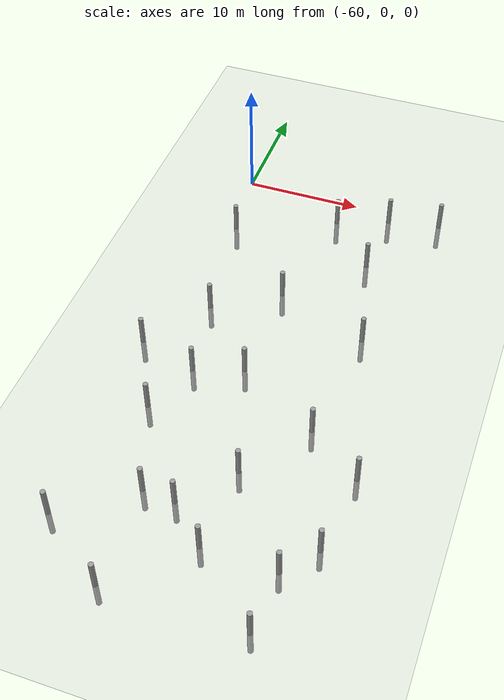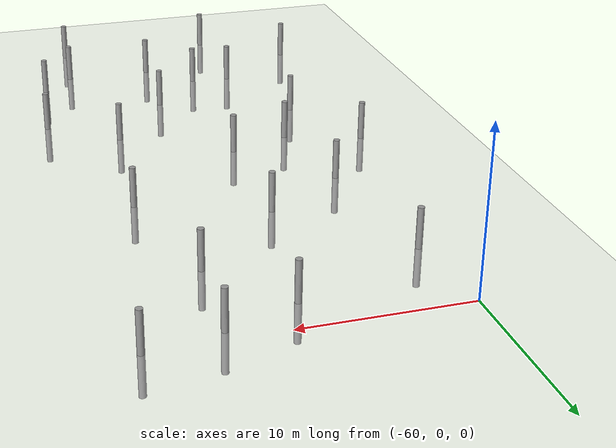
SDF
<sdf version="1.6">
 <world name="default">
  <model name="ground_plane">
   <static>1</static>
   <link name="link">
    <collision name="collision">
     <geometry><plane><normal>0 0 1</normal><size>100 100</size></plane></geometry>
     <surface><friction><ode><mu>100</mu><mu2>50</mu2></ode></friction></surface>
    </collision>
    <visual name="visual">
     <cast_shadows>0</cast_shadows>
     <geometry><plane><normal>0 0 1</normal><size>100 100</size></plane></geometry>
     <material>
      <script><uri>file://media/materials/scripts/gazebo.material</uri><name>Gazebo/Grey</name></script>
     </material>
    </visual>
   </link>
  </model>
  <model name="empty_pillars_7">
   <model name="empty_pillar_clone_10">
    <link name="link">
     <inertial>
      <mass>1</mass>
      <inertia><ixx>0.145833</ixx><ixy>0</ixy><ixz>0</ixz><iyy>0.145833</iyy><iyz>0</iyz><izz>0.125</izz></inertia>
     </inertial>
     <visual name="visual">
      <geometry><cylinder><radius>0.2</radius><length>5</length></cylinder></geometry>
      <material>
       <script><name>Gazebo/Grey</name><uri>file://media/materials/scripts/gazebo.material</uri></script>
       <shader type="vertex"><normal_map>__default__</normal_map></shader>
       <ambient>0.3 0.3 0.3 1</ambient>
       <diffuse>0.7 0.7 0.7 1</diffuse>
       <specular>0.01 0.01 0.01 1</specular>
       <emissive>0 0 0 1</emissive>
      </material>
     </visual>
     <collision name="collision">
      <geometry><cylinder><radius>0.05</radius><length>5</length></cylinder></geometry>
      <surface>
       <friction>
        <ode><mu>1</mu><mu2>1</mu2><fdir1>0 0 0</fdir1><slip1>0</slip1><slip2>0</slip2></ode>
        <torsional>
         <coefficient>1</coefficient>
         <patch_radius>0</patch_radius>
         <surface_radius>0</surface_radius>
         <use_patch_radius>1</use_patch_radius>
         <ode><slip>0</slip></ode>
        </torsional>
       </friction>
       <bounce><restitution_coefficient>0</restitution_coefficient><threshold>1e+06</threshold></bounce>
       <contact>
        <collide_without_contact>0</collide_without_contact>
        <collide_without_contact_bitmask>1</collide_without_contact_bitmask>
        <collide_bitmask>1</collide_bitmask>
        <ode>
         <soft_cfm>0</soft_cfm>
         <soft_erp>0.2</soft_erp>
         <kp>1e+13</kp>
         <kd>1</kd>
         <max_vel>0.01</max_vel>
         <min_depth>0</min_depth>
        </ode>
        <bullet>
         <split_impulse>1</split_impulse>
         <split_impulse_penetration_threshold>-0.01</split_impulse_penetration_threshold>
         <soft_cfm>0</soft_cfm>
         <soft_erp>0.2</soft_erp>
         <kp>1e+13</kp>
         <kd>1</kd>
        </bullet>
       </contact>
      </surface>
     </collision>
    </link>
    <static>0</static>
    <pose>13.5083 -16.8403 0 0 -0 0</pose>
   </model>
   <model name="empty_pillar_clone_28">
    <link name="link">
     <inertial>
      <mass>1</mass>
      <inertia><ixx>0.145833</ixx><ixy>0</ixy><ixz>0</ixz><iyy>0.145833</iyy><iyz>0</iyz><izz>0.125</izz></inertia>
     </inertial>
     <visual name="visual">
      <geometry><cylinder><radius>0.2</radius><length>5</length></cylinder></geometry>
      <material>
       <script><name>Gazebo/Grey</name><uri>file://media/materials/scripts/gazebo.material</uri></script>
       <shader type="vertex"><normal_map>__default__</normal_map></shader>
       <ambient>0.3 0.3 0.3 1</ambient>
       <diffuse>0.7 0.7 0.7 1</diffuse>
       <specular>0.01 0.01 0.01 1</specular>
       <emissive>0 0 0 1</emissive>
      </material>
     </visual>
     <collision name="collision">
      <geometry><cylinder><radius>0.05</radius><length>5</length></cylinder></geometry>
      <surface>
       <friction>
        <ode><mu>1</mu><mu2>1</mu2><fdir1>0 0 0</fdir1><slip1>0</slip1><slip2>0</slip2></ode>
        <torsional>
         <coefficient>1</coefficient>
         <patch_radius>0</patch_radius>
         <surface_radius>0</surface_radius>
         <use_patch_radius>1</use_patch_radius>
         <ode><slip>0</slip></ode>
        </torsional>
       </friction>
       <bounce><restitution_coefficient>0</restitution_coefficient><threshold>1e+06</threshold></bounce>
       <contact>
        <collide_without_contact>0</collide_without_contact>
        <collide_without_contact_bitmask>1</collide_without_contact_bitmask>
        <collide_bitmask>1</collide_bitmask>
        <ode>
         <soft_cfm>0</soft_cfm>
         <soft_erp>0.2</soft_erp>
         <kp>1e+13</kp>
         <kd>1</kd>
         <max_vel>0.01</max_vel>
         <min_depth>0</min_depth>
        </ode>
        <bullet>
         <split_impulse>1</split_impulse>
         <split_impulse_penetration_threshold>-0.01</split_impulse_penetration_threshold>
         <soft_cfm>0</soft_cfm>
         <soft_erp>0.2</soft_erp>
         <kp>1e+13</kp>
         <kd>1</kd>
        </bullet>
       </contact>
      </surface>
     </collision>
    </link>
    <static>0</static>
    <pose>15.5447 15.5867 0 0 -0 0</pose>
   </model>
   <model name="empty_pillar_clone_30">
    <link name="link">
     <inertial>
      <mass>1</mass>
      <inertia><ixx>0.145833</ixx><ixy>0</ixy><ixz>0</ixz><iyy>0.145833</iyy><iyz>0</iyz><izz>0.125</izz></inertia>
     </inertial>
     <visual name="visual">
      <geometry><cylinder><radius>0.2</radius><length>5</length></cylinder></geometry>
      <material>
       <script><name>Gazebo/Grey</name><uri>file://media/materials/scripts/gazebo.material</uri></script>
       <shader type="vertex"><normal_map>__default__</normal_map></shader>
       <ambient>0.3 0.3 0.3 1</ambient>
       <diffuse>0.7 0.7 0.7 1</diffuse>
       <specular>0.01 0.01 0.01 1</specular>
       <emissive>0 0 0 1</emissive>
      </material>
     </visual>
     <collision name="collision">
      <geometry><cylinder><radius>0.05</radius><length>5</length></cylinder></geometry>
      <surface>
       <friction>
        <ode><mu>1</mu><mu2>1</mu2><fdir1>0 0 0</fdir1><slip1>0</slip1><slip2>0</slip2></ode>
        <torsional>
         <coefficient>1</coefficient>
         <patch_radius>0</patch_radius>
         <surface_radius>0</surface_radius>
         <use_patch_radius>1</use_patch_radius>
         <ode><slip>0</slip></ode>
        </torsional>
       </friction>
       <bounce><restitution_coefficient>0</restitution_coefficient><threshold>1e+06</threshold></bounce>
       <contact>
        <collide_without_contact>0</collide_without_contact>
        <collide_without_contact_bitmask>1</collide_without_contact_bitmask>
        <collide_bitmask>1</collide_bitmask>
        <ode>
         <soft_cfm>0</soft_cfm>
         <soft_erp>0.2</soft_erp>
         <kp>1e+13</kp>
         <kd>1</kd>
         <max_vel>0.01</max_vel>
         <min_depth>0</min_depth>
        </ode>
        <bullet>
         <split_impulse>1</split_impulse>
         <split_impulse_penetration_threshold>-0.01</split_impulse_penetration_threshold>
         <soft_cfm>0</soft_cfm>
         <soft_erp>0.2</soft_erp>
         <kp>1e+13</kp>
         <kd>1</kd>
        </bullet>
       </contact>
      </surface>
     </collision>
    </link>
    <static>0</static>
    <pose>23.752 19.2231 0 0 -0 0</pose>
   </model>
   <model name="empty_pillar_clone_31">
    <link name="link">
     <inertial>
      <mass>1</mass>
      <inertia><ixx>0.145833</ixx><ixy>0</ixy><ixz>0</ixz><iyy>0.145833</iyy><iyz>0</iyz><izz>0.125</izz></inertia>
     </inertial>
     <visual name="visual">
      <geometry><cylinder><radius>0.2</radius><length>5</length></cylinder></geometry>
      <material>
       <script><name>Gazebo/Grey</name><uri>file://media/materials/scripts/gazebo.material</uri></script>
       <shader type="vertex"><normal_map>__default__</normal_map></shader>
       <ambient>0.3 0.3 0.3 1</ambient>
       <diffuse>0.7 0.7 0.7 1</diffuse>
       <specular>0.01 0.01 0.01 1</specular>
       <emissive>0 0 0 1</emissive>
      </material>
     </visual>
     <collision name="collision">
      <geometry><cylinder><radius>0.05</radius><length>5</length></cylinder></geometry>
      <surface>
       <friction>
        <ode><mu>1</mu><mu2>1</mu2><fdir1>0 0 0</fdir1><slip1>0</slip1><slip2>0</slip2></ode>
        <torsional>
         <coefficient>1</coefficient>
         <patch_radius>0</patch_radius>
         <surface_radius>0</surface_radius>
         <use_patch_radius>1</use_patch_radius>
         <ode><slip>0</slip></ode>
        </torsional>
       </friction>
       <bounce><restitution_coefficient>0</restitution_coefficient><threshold>1e+06</threshold></bounce>
       <contact>
        <collide_without_contact>0</collide_without_contact>
        <collide_without_contact_bitmask>1</collide_without_contact_bitmask>
        <collide_bitmask>1</collide_bitmask>
        <ode>
         <soft_cfm>0</soft_cfm>
         <soft_erp>0.2</soft_erp>
         <kp>1e+13</kp>
         <kd>1</kd>
         <max_vel>0.01</max_vel>
         <min_depth>0</min_depth>
        </ode>
        <bullet>
         <split_impulse>1</split_impulse>
         <split_impulse_penetration_threshold>-0.01</split_impulse_penetration_threshold>
         <soft_cfm>0</soft_cfm>
         <soft_erp>0.2</soft_erp>
         <kp>1e+13</kp>
         <kd>1</kd>
        </bullet>
       </contact>
      </surface>
     </collision>
    </link>
    <static>0</static>
    <pose>22.0722 9.04182 0 0 -0 0</pose>
   </model>
   <model name="empty_pillar_clone_32">
    <link name="link">
     <inertial>
      <mass>1</mass>
      <inertia><ixx>0.145833</ixx><ixy>0</ixy><ixz>0</ixz><iyy>0.145833</iyy><iyz>0</iyz><izz>0.125</izz></inertia>
     </inertial>
     <visual name="visual">
      <geometry><cylinder><radius>0.2</radius><length>5</length></cylinder></geometry>
      <material>
       <script><name>Gazebo/Grey</name><uri>file://media/materials/scripts/gazebo.material</uri></script>
       <shader type="vertex"><normal_map>__default__</normal_map></shader>
       <ambient>0.3 0.3 0.3 1</ambient>
       <diffuse>0.7 0.7 0.7 1</diffuse>
       <specular>0.01 0.01 0.01 1</specular>
       <emissive>0 0 0 1</emissive>
      </material>
     </visual>
     <collision name="collision">
      <geometry><cylinder><radius>0.05</radius><length>5</length></cylinder></geometry>
      <surface>
       <friction>
        <ode><mu>1</mu><mu2>1</mu2><fdir1>0 0 0</fdir1><slip1>0</slip1><slip2>0</slip2></ode>
        <torsional>
         <coefficient>1</coefficient>
         <patch_radius>0</patch_radius>
         <surface_radius>0</surface_radius>
         <use_patch_radius>1</use_patch_radius>
         <ode><slip>0</slip></ode>
        </torsional>
       </friction>
       <bounce><restitution_coefficient>0</restitution_coefficient><threshold>1e+06</threshold></bounce>
       <contact>
        <collide_without_contact>0</collide_without_contact>
        <collide_without_contact_bitmask>1</collide_without_contact_bitmask>
        <collide_bitmask>1</collide_bitmask>
        <ode>
         <soft_cfm>0</soft_cfm>
         <soft_erp>0.2</soft_erp>
         <kp>1e+13</kp>
         <kd>1</kd>
         <max_vel>0.01</max_vel>
         <min_depth>0</min_depth>
        </ode>
        <bullet>
         <split_impulse>1</split_impulse>
         <split_impulse_penetration_threshold>-0.01</split_impulse_penetration_threshold>
         <soft_cfm>0</soft_cfm>
         <soft_erp>0.2</soft_erp>
         <kp>1e+13</kp>
         <kd>1</kd>
        </bullet>
       </contact>
      </surface>
     </collision>
    </link>
    <static>0</static>
    <pose>21.9854 0.15966 0 0 -0 0</pose>
   </model>
   <model name="empty_pillar_clone_33">
    <link name="link">
     <inertial>
      <mass>1</mass>
      <inertia><ixx>0.145833</ixx><ixy>0</ixy><ixz>0</ixz><iyy>0.145833</iyy><iyz>0</iyz><izz>0.125</izz></inertia>
     </inertial>
     <visual name="visual">
      <geometry><cylinder><radius>0.2</radius><length>5</length></cylinder></geometry>
      <material>
       <script><name>Gazebo/Grey</name><uri>file://media/materials/scripts/gazebo.material</uri></script>
       <shader type="vertex"><normal_map>__default__</normal_map></shader>
       <ambient>0.3 0.3 0.3 1</ambient>
       <diffuse>0.7 0.7 0.7 1</diffuse>
       <specular>0.01 0.01 0.01 1</specular>
       <emissive>0 0 0 1</emissive>
      </material>
     </visual>
     <collision name="collision">
      <geometry><cylinder><radius>0.05</radius><length>5</length></cylinder></geometry>
      <surface>
       <friction>
        <ode><mu>1</mu><mu2>1</mu2><fdir1>0 0 0</fdir1><slip1>0</slip1><slip2>0</slip2></ode>
        <torsional>
         <coefficient>1</coefficient>
         <patch_radius>0</patch_radius>
         <surface_radius>0</surface_radius>
         <use_patch_radius>1</use_patch_radius>
         <ode><slip>0</slip></ode>
        </torsional>
       </friction>
       <bounce><restitution_coefficient>0</restitution_coefficient><threshold>1e+06</threshold></bounce>
       <contact>
        <collide_without_contact>0</collide_without_contact>
        <collide_without_contact_bitmask>1</collide_without_contact_bitmask>
        <collide_bitmask>1</collide_bitmask>
        <ode>
         <soft_cfm>0</soft_cfm>
         <soft_erp>0.2</soft_erp>
         <kp>1e+13</kp>
         <kd>1</kd>
         <max_vel>0.01</max_vel>
         <min_depth>0</min_depth>
        </ode>
        <bullet>
         <split_impulse>1</split_impulse>
         <split_impulse_penetration_threshold>-0.01</split_impulse_penetration_threshold>
         <soft_cfm>0</soft_cfm>
         <soft_erp>0.2</soft_erp>
         <kp>1e+13</kp>
         <kd>1</kd>
        </bullet>
       </contact>
      </surface>
     </collision>
    </link>
    <static>0</static>
    <pose>21.5621 -13.0704 0 0 -0 0</pose>
   </model>
   <model name="empty_pillar_clone_34">
    <link name="link">
     <inertial>
      <mass>1</mass>
      <inertia><ixx>0.145833</ixx><ixy>0</ixy><ixz>0</ixz><iyy>0.145833</iyy><iyz>0</iyz><izz>0.125</izz></inertia>
     </inertial>
     <visual name="visual">
      <geometry><cylinder><radius>0.2</radius><length>5</length></cylinder></geometry>
      <material>
       <script><name>Gazebo/Grey</name><uri>file://media/materials/scripts/gazebo.material</uri></script>
       <shader type="vertex"><normal_map>__default__</normal_map></shader>
       <ambient>0.3 0.3 0.3 1</ambient>
       <diffuse>0.7 0.7 0.7 1</diffuse>
       <specular>0.01 0.01 0.01 1</specular>
       <emissive>0 0 0 1</emissive>
      </material>
     </visual>
     <collision name="collision">
      <geometry><cylinder><radius>0.05</radius><length>5</length></cylinder></geometry>
      <surface>
       <friction>
        <ode><mu>1</mu><mu2>1</mu2><fdir1>0 0 0</fdir1><slip1>0</slip1><slip2>0</slip2></ode>
        <torsional>
         <coefficient>1</coefficient>
         <patch_radius>0</patch_radius>
         <surface_radius>0</surface_radius>
         <use_patch_radius>1</use_patch_radius>
         <ode><slip>0</slip></ode>
        </torsional>
       </friction>
       <bounce><restitution_coefficient>0</restitution_coefficient><threshold>1e+06</threshold></bounce>
       <contact>
        <collide_without_contact>0</collide_without_contact>
        <collide_without_contact_bitmask>1</collide_without_contact_bitmask>
        <collide_bitmask>1</collide_bitmask>
        <ode>
         <soft_cfm>0</soft_cfm>
         <soft_erp>0.2</soft_erp>
         <kp>1e+13</kp>
         <kd>1</kd>
         <max_vel>0.01</max_vel>
         <min_depth>0</min_depth>
        </ode>
        <bullet>
         <split_impulse>1</split_impulse>
         <split_impulse_penetration_threshold>-0.01</split_impulse_penetration_threshold>
         <soft_cfm>0</soft_cfm>
         <soft_erp>0.2</soft_erp>
         <kp>1e+13</kp>
         <kd>1</kd>
        </bullet>
       </contact>
      </surface>
     </collision>
    </link>
    <static>0</static>
    <pose>19.0861 -20.8946 0 0 -0 0</pose>
   </model>
   <model name="empty_pillar_clone_48">
    <link name="link">
     <inertial>
      <mass>1</mass>
      <inertia><ixx>0.145833</ixx><ixy>0</ixy><ixz>0</ixz><iyy>0.145833</iyy><iyz>0</iyz><izz>0.125</izz></inertia>
     </inertial>
     <visual name="visual">
      <geometry><cylinder><radius>0.2</radius><length>5</length></cylinder></geometry>
      <material>
       <script><name>Gazebo/Grey</name><uri>file://media/materials/scripts/gazebo.material</uri></script>
       <shader type="vertex"><normal_map>__default__</normal_map></shader>
       <ambient>0.3 0.3 0.3 1</ambient>
       <diffuse>0.7 0.7 0.7 1</diffuse>
       <specular>0.01 0.01 0.01 1</specular>
       <emissive>0 0 0 1</emissive>
      </material>
     </visual>
     <collision name="collision">
      <geometry><cylinder><radius>0.05</radius><length>5</length></cylinder></geometry>
      <surface>
       <friction>
        <ode><mu>1</mu><mu2>1</mu2><fdir1>0 0 0</fdir1><slip1>0</slip1><slip2>0</slip2></ode>
        <torsional>
         <coefficient>1</coefficient>
         <patch_radius>0</patch_radius>
         <surface_radius>0</surface_radius>
         <use_patch_radius>1</use_patch_radius>
         <ode><slip>0</slip></ode>
        </torsional>
       </friction>
       <bounce><restitution_coefficient>0</restitution_coefficient><threshold>1e+06</threshold></bounce>
       <contact>
        <collide_without_contact>0</collide_without_contact>
        <collide_without_contact_bitmask>1</collide_without_contact_bitmask>
        <collide_bitmask>1</collide_bitmask>
        <ode>
         <soft_cfm>0</soft_cfm>
         <soft_erp>0.2</soft_erp>
         <kp>1e+13</kp>
         <kd>1</kd>
         <max_vel>0.01</max_vel>
         <min_depth>0</min_depth>
        </ode>
        <bullet>
         <split_impulse>1</split_impulse>
         <split_impulse_penetration_threshold>-0.01</split_impulse_penetration_threshold>
         <soft_cfm>0</soft_cfm>
         <soft_erp>0.2</soft_erp>
         <kp>1e+13</kp>
         <kd>1</kd>
        </bullet>
       </contact>
      </surface>
     </collision>
    </link>
    <static>0</static>
    <pose>16.2633 -5.65052 0 0 -0 0</pose>
   </model>
   <model name="empty_pillar_clone_54">
    <link name="link">
     <inertial>
      <mass>1</mass>
      <inertia><ixx>0.145833</ixx><ixy>0</ixy><ixz>0</ixz><iyy>0.145833</iyy><iyz>0</iyz><izz>0.125</izz></inertia>
     </inertial>
     <visual name="visual">
      <geometry><cylinder><radius>0.2</radius><length>5</length></cylinder></geometry>
      <material>
       <script><name>Gazebo/Grey</name><uri>file://media/materials/scripts/gazebo.material</uri></script>
       <shader type="vertex"><normal_map>__default__</normal_map></shader>
       <ambient>0.3 0.3 0.3 1</ambient>
       <diffuse>0.7 0.7 0.7 1</diffuse>
       <specular>0.01 0.01 0.01 1</specular>
       <emissive>0 0 0 1</emissive>
      </material>
     </visual>
     <collision name="collision">
      <geometry><cylinder><radius>0.05</radius><length>5</length></cylinder></geometry>
      <surface>
       <friction>
        <ode><mu>1</mu><mu2>1</mu2><fdir1>0 0 0</fdir1><slip1>0</slip1><slip2>0</slip2></ode>
        <torsional>
         <coefficient>1</coefficient>
         <patch_radius>0</patch_radius>
         <surface_radius>0</surface_radius>
         <use_patch_radius>1</use_patch_radius>
         <ode><slip>0</slip></ode>
        </torsional>
       </friction>
       <bounce><restitution_coefficient>0</restitution_coefficient><threshold>1e+06</threshold></bounce>
       <contact>
        <collide_without_contact>0</collide_without_contact>
        <collide_without_contact_bitmask>1</collide_without_contact_bitmask>
        <collide_bitmask>1</collide_bitmask>
        <ode>
         <soft_cfm>0</soft_cfm>
         <soft_erp>0.2</soft_erp>
         <kp>1e+13</kp>
         <kd>1</kd>
         <max_vel>0.01</max_vel>
         <min_depth>0</min_depth>
        </ode>
        <bullet>
         <split_impulse>1</split_impulse>
         <split_impulse_penetration_threshold>-0.01</split_impulse_penetration_threshold>
         <soft_cfm>0</soft_cfm>
         <soft_erp>0.2</soft_erp>
         <kp>1e+13</kp>
         <kd>1</kd>
        </bullet>
       </contact>
      </surface>
     </collision>
    </link>
    <static>0</static>
    <pose>24.557 -15.8784 0 0 -0 0</pose>
   </model>
   <model name="empty_pillar_clone_55">
    <link name="link">
     <inertial>
      <mass>1</mass>
      <inertia><ixx>0.145833</ixx><ixy>0</ixy><ixz>0</ixz><iyy>0.145833</iyy><iyz>0</iyz><izz>0.125</izz></inertia>
     </inertial>
     <visual name="visual">
      <geometry><cylinder><radius>0.2</radius><length>5</length></cylinder></geometry>
      <material>
       <script><name>Gazebo/Grey</name><uri>file://media/materials/scripts/gazebo.material</uri></script>
       <shader type="vertex"><normal_map>__default__</normal_map></shader>
       <ambient>0.3 0.3 0.3 1</ambient>
       <diffuse>0.7 0.7 0.7 1</diffuse>
       <specular>0.01 0.01 0.01 1</specular>
       <emissive>0 0 0 1</emissive>
      </material>
     </visual>
     <collision name="collision">
      <geometry><cylinder><radius>0.05</radius><length>5</length></cylinder></geometry>
      <surface>
       <friction>
        <ode><mu>1</mu><mu2>1</mu2><fdir1>0 0 0</fdir1><slip1>0</slip1><slip2>0</slip2></ode>
        <torsional>
         <coefficient>1</coefficient>
         <patch_radius>0</patch_radius>
         <surface_radius>0</surface_radius>
         <use_patch_radius>1</use_patch_radius>
         <ode><slip>0</slip></ode>
        </torsional>
       </friction>
       <bounce><restitution_coefficient>0</restitution_coefficient><threshold>1e+06</threshold></bounce>
       <contact>
        <collide_without_contact>0</collide_without_contact>
        <collide_without_contact_bitmask>1</collide_without_contact_bitmask>
        <collide_bitmask>1</collide_bitmask>
        <ode>
         <soft_cfm>0</soft_cfm>
         <soft_erp>0.2</soft_erp>
         <kp>1e+13</kp>
         <kd>1</kd>
         <max_vel>0.01</max_vel>
         <min_depth>0</min_depth>
        </ode>
        <bullet>
         <split_impulse>1</split_impulse>
         <split_impulse_penetration_threshold>-0.01</split_impulse_penetration_threshold>
         <soft_cfm>0</soft_cfm>
         <soft_erp>0.2</soft_erp>
         <kp>1e+13</kp>
         <kd>1</kd>
        </bullet>
       </contact>
      </surface>
     </collision>
    </link>
    <static>0</static>
    <pose>13.2247 0.382706 0 0 -0 0</pose>
   </model>
   <model name="empty_pillar_clone_6">
    <link name="link">
     <inertial>
      <mass>1</mass>
      <inertia><ixx>0.145833</ixx><ixy>0</ixy><ixz>0</ixz><iyy>0.145833</iyy><iyz>0</iyz><izz>0.125</izz></inertia>
     </inertial>
     <visual name="visual">
      <geometry><cylinder><radius>0.2</radius><length>5</length></cylinder></geometry>
      <material>
       <script><name>Gazebo/Grey</name><uri>file://media/materials/scripts/gazebo.material</uri></script>
       <shader type="vertex"><normal_map>__default__</normal_map></shader>
       <ambient>0.3 0.3 0.3 1</ambient>
       <diffuse>0.7 0.7 0.7 1</diffuse>
       <specular>0.01 0.01 0.01 1</specular>
       <emissive>0 0 0 1</emissive>
      </material>
     </visual>
     <collision name="collision">
      <geometry><cylinder><radius>0.05</radius><length>5</length></cylinder></geometry>
      <surface>
       <friction>
        <ode><mu>1</mu><mu2>1</mu2><fdir1>0 0 0</fdir1><slip1>0</slip1><slip2>0</slip2></ode>
        <torsional>
         <coefficient>1</coefficient>
         <patch_radius>0</patch_radius>
         <surface_radius>0</surface_radius>
         <use_patch_radius>1</use_patch_radius>
         <ode><slip>0</slip></ode>
        </torsional>
       </friction>
       <bounce><restitution_coefficient>0</restitution_coefficient><threshold>1e+06</threshold></bounce>
       <contact>
        <collide_without_contact>0</collide_without_contact>
        <collide_without_contact_bitmask>1</collide_without_contact_bitmask>
        <collide_bitmask>1</collide_bitmask>
        <ode>
         <soft_cfm>0</soft_cfm>
         <soft_erp>0.2</soft_erp>
         <kp>1e+13</kp>
         <kd>1</kd>
         <max_vel>0.01</max_vel>
         <min_depth>0</min_depth>
        </ode>
        <bullet>
         <split_impulse>1</split_impulse>
         <split_impulse_penetration_threshold>-0.01</split_impulse_penetration_threshold>
         <soft_cfm>0</soft_cfm>
         <soft_erp>0.2</soft_erp>
         <kp>1e+13</kp>
         <kd>1</kd>
        </bullet>
       </contact>
      </surface>
     </collision>
    </link>
    <static>0</static>
    <pose>24.9156 -9.11394 0 0 -0 0</pose>
   </model>
   <model name="empty_pillar_clone_7">
    <link name="link">
     <inertial>
      <mass>1</mass>
      <inertia><ixx>0.145833</ixx><ixy>0</ixy><ixz>0</ixz><iyy>0.145833</iyy><iyz>0</iyz><izz>0.125</izz></inertia>
     </inertial>
     <visual name="visual">
      <geometry><cylinder><radius>0.2</radius><length>5</length></cylinder></geometry>
      <material>
       <script><name>Gazebo/Grey</name><uri>file://media/materials/scripts/gazebo.material</uri></script>
       <shader type="vertex"><normal_map>__default__</normal_map></shader>
       <ambient>0.3 0.3 0.3 1</ambient>
       <diffuse>0.7 0.7 0.7 1</diffuse>
       <specular>0.01 0.01 0.01 1</specular>
       <emissive>0 0 0 1</emissive>
      </material>
     </visual>
     <collision name="collision">
      <geometry><cylinder><radius>0.05</radius><length>5</length></cylinder></geometry>
      <surface>
       <friction>
        <ode><mu>1</mu><mu2>1</mu2><fdir1>0 0 0</fdir1><slip1>0</slip1><slip2>0</slip2></ode>
        <torsional>
         <coefficient>1</coefficient>
         <patch_radius>0</patch_radius>
         <surface_radius>0</surface_radius>
         <use_patch_radius>1</use_patch_radius>
         <ode><slip>0</slip></ode>
        </torsional>
       </friction>
       <bounce><restitution_coefficient>0</restitution_coefficient><threshold>1e+06</threshold></bounce>
       <contact>
        <collide_without_contact>0</collide_without_contact>
        <collide_without_contact_bitmask>1</collide_without_contact_bitmask>
        <collide_bitmask>1</collide_bitmask>
        <ode>
         <soft_cfm>0</soft_cfm>
         <soft_erp>0.2</soft_erp>
         <kp>1e+13</kp>
         <kd>1</kd>
         <max_vel>0.01</max_vel>
         <min_depth>0</min_depth>
        </ode>
        <bullet>
         <split_impulse>1</split_impulse>
         <split_impulse_penetration_threshold>-0.01</split_impulse_penetration_threshold>
         <soft_cfm>0</soft_cfm>
         <soft_erp>0.2</soft_erp>
         <kp>1e+13</kp>
         <kd>1</kd>
        </bullet>
       </contact>
      </surface>
     </collision>
    </link>
    <static>0</static>
    <pose>16.9242 5.74519 0 0 -0 0</pose>
   </model>
   <model name="empty_pillar_clone_8">
    <link name="link">
     <inertial>
      <mass>1</mass>
      <inertia><ixx>0.145833</ixx><ixy>0</ixy><ixz>0</ixz><iyy>0.145833</iyy><iyz>0</iyz><izz>0.125</izz></inertia>
     </inertial>
     <visual name="visual">
      <geometry><cylinder><radius>0.2</radius><length>5</length></cylinder></geometry>
      <material>
       <script><name>Gazebo/Grey</name><uri>file://media/materials/scripts/gazebo.material</uri></script>
       <shader type="vertex"><normal_map>__default__</normal_map></shader>
       <ambient>0.3 0.3 0.3 1</ambient>
       <diffuse>0.7 0.7 0.7 1</diffuse>
       <specular>0.01 0.01 0.01 1</specular>
       <emissive>0 0 0 1</emissive>
      </material>
     </visual>
     <collision name="collision">
      <geometry><cylinder><radius>0.05</radius><length>5</length></cylinder></geometry>
      <surface>
       <friction>
        <ode><mu>1</mu><mu2>1</mu2><fdir1>0 0 0</fdir1><slip1>0</slip1><slip2>0</slip2></ode>
        <torsional>
         <coefficient>1</coefficient>
         <patch_radius>0</patch_radius>
         <surface_radius>0</surface_radius>
         <use_patch_radius>1</use_patch_radius>
         <ode><slip>0</slip></ode>
        </torsional>
       </friction>
       <bounce><restitution_coefficient>0</restitution_coefficient><threshold>1e+06</threshold></bounce>
       <contact>
        <collide_without_contact>0</collide_without_contact>
        <collide_without_contact_bitmask>1</collide_without_contact_bitmask>
        <collide_bitmask>1</collide_bitmask>
        <ode>
         <soft_cfm>0</soft_cfm>
         <soft_erp>0.2</soft_erp>
         <kp>1e+13</kp>
         <kd>1</kd>
         <max_vel>0.01</max_vel>
         <min_depth>0</min_depth>
        </ode>
        <bullet>
         <split_impulse>1</split_impulse>
         <split_impulse_penetration_threshold>-0.01</split_impulse_penetration_threshold>
         <soft_cfm>0</soft_cfm>
         <soft_erp>0.2</soft_erp>
         <kp>1e+13</kp>
         <kd>1</kd>
        </bullet>
       </contact>
      </surface>
     </collision>
    </link>
    <static>0</static>
    <pose>18.9854 -12.8403 0 0 -0 0</pose>
   </model>
   <model name="empty_pillar_clone_9">
    <link name="link">
     <inertial>
      <mass>1</mass>
      <inertia><ixx>0.145833</ixx><ixy>0</ixy><ixz>0</ixz><iyy>0.145833</iyy><iyz>0</iyz><izz>0.125</izz></inertia>
     </inertial>
     <visual name="visual">
      <geometry><cylinder><radius>0.2</radius><length>5</length></cylinder></geometry>
      <material>
       <script><name>Gazebo/Grey</name><uri>file://media/materials/scripts/gazebo.material</uri></script>
       <shader type="vertex"><normal_map>__default__</normal_map></shader>
       <ambient>0.3 0.3 0.3 1</ambient>
       <diffuse>0.7 0.7 0.7 1</diffuse>
       <specular>0.01 0.01 0.01 1</specular>
       <emissive>0 0 0 1</emissive>
      </material>
     </visual>
     <collision name="collision">
      <geometry><cylinder><radius>0.05</radius><length>5</length></cylinder></geometry>
      <surface>
       <friction>
        <ode><mu>1</mu><mu2>1</mu2><fdir1>0 0 0</fdir1><slip1>0</slip1><slip2>0</slip2></ode>
        <torsional>
         <coefficient>1</coefficient>
         <patch_radius>0</patch_radius>
         <surface_radius>0</surface_radius>
         <use_patch_radius>1</use_patch_radius>
         <ode><slip>0</slip></ode>
        </torsional>
       </friction>
       <bounce><restitution_coefficient>0</restitution_coefficient><threshold>1e+06</threshold></bounce>
       <contact>
        <collide_without_contact>0</collide_without_contact>
        <collide_without_contact_bitmask>1</collide_without_contact_bitmask>
        <collide_bitmask>1</collide_bitmask>
        <ode>
         <soft_cfm>0</soft_cfm>
         <soft_erp>0.2</soft_erp>
         <kp>1e+13</kp>
         <kd>1</kd>
         <max_vel>0.01</max_vel>
         <min_depth>0</min_depth>
        </ode>
        <bullet>
         <split_impulse>1</split_impulse>
         <split_impulse_penetration_threshold>-0.01</split_impulse_penetration_threshold>
         <soft_cfm>0</soft_cfm>
         <soft_erp>0.2</soft_erp>
         <kp>1e+13</kp>
         <kd>1</kd>
        </bullet>
       </contact>
      </surface>
     </collision>
    </link>
    <static>0</static>
    <pose>18.1111 -1.13899 0 0 -0 0</pose>
   </model>
   <static>0</static>
   <pose>-74.8311 -21.7347 0 0 -0 0</pose>
  </model>
  <model name="empty_pillars_8">
   <model name="empty_pillar_clone_18">
    <link name="link">
     <inertial>
      <mass>1</mass>
      <inertia><ixx>0.145833</ixx><ixy>0</ixy><ixz>0</ixz><iyy>0.145833</iyy><iyz>0</iyz><izz>0.125</izz></inertia>
     </inertial>
     <visual name="visual">
      <geometry><cylinder><radius>0.2</radius><length>5</length></cylinder></geometry>
      <material>
       <script><name>Gazebo/Grey</name><uri>file://media/materials/scripts/gazebo.material</uri></script>
       <shader type="vertex"><normal_map>__default__</normal_map></shader>
       <ambient>0.3 0.3 0.3 1</ambient>
       <diffuse>0.7 0.7 0.7 1</diffuse>
       <specular>0.01 0.01 0.01 1</specular>
       <emissive>0 0 0 1</emissive>
      </material>
     </visual>
     <collision name="collision">
      <geometry><cylinder><radius>0.05</radius><length>5</length></cylinder></geometry>
      <surface>
       <friction>
        <ode><mu>1</mu><mu2>1</mu2><fdir1>0 0 0</fdir1><slip1>0</slip1><slip2>0</slip2></ode>
        <torsional>
         <coefficient>1</coefficient>
         <patch_radius>0</patch_radius>
         <surface_radius>0</surface_radius>
         <use_patch_radius>1</use_patch_radius>
         <ode><slip>0</slip></ode>
        </torsional>
       </friction>
       <bounce><restitution_coefficient>0</restitution_coefficient><threshold>1e+06</threshold></bounce>
       <contact>
        <collide_without_contact>0</collide_without_contact>
        <collide_without_contact_bitmask>1</collide_without_contact_bitmask>
        <collide_bitmask>1</collide_bitmask>
        <ode>
         <soft_cfm>0</soft_cfm>
         <soft_erp>0.2</soft_erp>
         <kp>1e+13</kp>
         <kd>1</kd>
         <max_vel>0.01</max_vel>
         <min_depth>0</min_depth>
        </ode>
        <bullet>
         <split_impulse>1</split_impulse>
         <split_impulse_penetration_threshold>-0.01</split_impulse_penetration_threshold>
         <soft_cfm>0</soft_cfm>
         <soft_erp>0.2</soft_erp>
         <kp>1e+13</kp>
         <kd>1</kd>
        </bullet>
       </contact>
      </surface>
     </collision>
    </link>
    <static>0</static>
    <pose>-20.0146 5.15966 0 0 -0 0</pose>
   </model>
   <model name="empty_pillar_clone_21">
    <link name="link">
     <inertial>
      <mass>1</mass>
      <inertia><ixx>0.145833</ixx><ixy>0</ixy><ixz>0</ixz><iyy>0.145833</iyy><iyz>0</iyz><izz>0.125</izz></inertia>
     </inertial>
     <visual name="visual">
      <geometry><cylinder><radius>0.2</radius><length>5</length></cylinder></geometry>
      <material>
       <script><name>Gazebo/Grey</name><uri>file://media/materials/scripts/gazebo.material</uri></script>
       <shader type="vertex"><normal_map>__default__</normal_map></shader>
       <ambient>0.3 0.3 0.3 1</ambient>
       <diffuse>0.7 0.7 0.7 1</diffuse>
       <specular>0.01 0.01 0.01 1</specular>
       <emissive>0 0 0 1</emissive>
      </material>
     </visual>
     <collision name="collision">
      <geometry><cylinder><radius>0.05</radius><length>5</length></cylinder></geometry>
      <surface>
       <friction>
        <ode><mu>1</mu><mu2>1</mu2><fdir1>0 0 0</fdir1><slip1>0</slip1><slip2>0</slip2></ode>
        <torsional>
         <coefficient>1</coefficient>
         <patch_radius>0</patch_radius>
         <surface_radius>0</surface_radius>
         <use_patch_radius>1</use_patch_radius>
         <ode><slip>0</slip></ode>
        </torsional>
       </friction>
       <bounce><restitution_coefficient>0</restitution_coefficient><threshold>1e+06</threshold></bounce>
       <contact>
        <collide_without_contact>0</collide_without_contact>
        <collide_without_contact_bitmask>1</collide_without_contact_bitmask>
        <collide_bitmask>1</collide_bitmask>
        <ode>
         <soft_cfm>0</soft_cfm>
         <soft_erp>0.2</soft_erp>
         <kp>1e+13</kp>
         <kd>1</kd>
         <max_vel>0.01</max_vel>
         <min_depth>0</min_depth>
        </ode>
        <bullet>
         <split_impulse>1</split_impulse>
         <split_impulse_penetration_threshold>-0.01</split_impulse_penetration_threshold>
         <soft_cfm>0</soft_cfm>
         <soft_erp>0.2</soft_erp>
         <kp>1e+13</kp>
         <kd>1</kd>
        </bullet>
       </contact>
      </surface>
     </collision>
    </link>
    <static>0</static>
    <pose>-21.7273 19.7662 0 0 -0 0</pose>
   </model>
   <model name="empty_pillar_clone_22">
    <link name="link">
     <inertial>
      <mass>1</mass>
      <inertia><ixx>0.145833</ixx><ixy>0</ixy><ixz>0</ixz><iyy>0.145833</iyy><iyz>0</iyz><izz>0.125</izz></inertia>
     </inertial>
     <visual name="visual">
      <geometry><cylinder><radius>0.2</radius><length>5</length></cylinder></geometry>
      <material>
       <script><name>Gazebo/Grey</name><uri>file://media/materials/scripts/gazebo.material</uri></script>
       <shader type="vertex"><normal_map>__default__</normal_map></shader>
       <ambient>0.3 0.3 0.3 1</ambient>
       <diffuse>0.7 0.7 0.7 1</diffuse>
       <specular>0.01 0.01 0.01 1</specular>
       <emissive>0 0 0 1</emissive>
      </material>
     </visual>
     <collision name="collision">
      <geometry><cylinder><radius>0.05</radius><length>5</length></cylinder></geometry>
      <surface>
       <friction>
        <ode><mu>1</mu><mu2>1</mu2><fdir1>0 0 0</fdir1><slip1>0</slip1><slip2>0</slip2></ode>
        <torsional>
         <coefficient>1</coefficient>
         <patch_radius>0</patch_radius>
         <surface_radius>0</surface_radius>
         <use_patch_radius>1</use_patch_radius>
         <ode><slip>0</slip></ode>
        </torsional>
       </friction>
       <bounce><restitution_coefficient>0</restitution_coefficient><threshold>1e+06</threshold></bounce>
       <contact>
        <collide_without_contact>0</collide_without_contact>
        <collide_without_contact_bitmask>1</collide_without_contact_bitmask>
        <collide_bitmask>1</collide_bitmask>
        <ode>
         <soft_cfm>0</soft_cfm>
         <soft_erp>0.2</soft_erp>
         <kp>1e+13</kp>
         <kd>1</kd>
         <max_vel>0.01</max_vel>
         <min_depth>0</min_depth>
        </ode>
        <bullet>
         <split_impulse>1</split_impulse>
         <split_impulse_penetration_threshold>-0.01</split_impulse_penetration_threshold>
         <soft_cfm>0</soft_cfm>
         <soft_erp>0.2</soft_erp>
         <kp>1e+13</kp>
         <kd>1</kd>
        </bullet>
       </contact>
      </surface>
     </collision>
    </link>
    <static>0</static>
    <pose>-17.3667 20.5782 0 0 -0 0</pose>
   </model>
   <model name="empty_pillar_clone_35">
    <link name="link">
     <inertial>
      <mass>1</mass>
      <inertia><ixx>0.145833</ixx><ixy>0</ixy><ixz>0</ixz><iyy>0.145833</iyy><iyz>0</iyz><izz>0.125</izz></inertia>
     </inertial>
     <visual name="visual">
      <geometry><cylinder><radius>0.2</radius><length>5</length></cylinder></geometry>
      <material>
       <script><name>Gazebo/Grey</name><uri>file://media/materials/scripts/gazebo.material</uri></script>
       <shader type="vertex"><normal_map>__default__</normal_map></shader>
       <ambient>0.3 0.3 0.3 1</ambient>
       <diffuse>0.7 0.7 0.7 1</diffuse>
       <specular>0.01 0.01 0.01 1</specular>
       <emissive>0 0 0 1</emissive>
      </material>
     </visual>
     <collision name="collision">
      <geometry><cylinder><radius>0.05</radius><length>5</length></cylinder></geometry>
      <surface>
       <friction>
        <ode><mu>1</mu><mu2>1</mu2><fdir1>0 0 0</fdir1><slip1>0</slip1><slip2>0</slip2></ode>
        <torsional>
         <coefficient>1</coefficient>
         <patch_radius>0</patch_radius>
         <surface_radius>0</surface_radius>
         <use_patch_radius>1</use_patch_radius>
         <ode><slip>0</slip></ode>
        </torsional>
       </friction>
       <bounce><restitution_coefficient>0</restitution_coefficient><threshold>1e+06</threshold></bounce>
       <contact>
        <collide_without_contact>0</collide_without_contact>
        <collide_without_contact_bitmask>1</collide_without_contact_bitmask>
        <collide_bitmask>1</collide_bitmask>
        <ode>
         <soft_cfm>0</soft_cfm>
         <soft_erp>0.2</soft_erp>
         <kp>1e+13</kp>
         <kd>1</kd>
         <max_vel>0.01</max_vel>
         <min_depth>0</min_depth>
        </ode>
        <bullet>
         <split_impulse>1</split_impulse>
         <split_impulse_penetration_threshold>-0.01</split_impulse_penetration_threshold>
         <soft_cfm>0</soft_cfm>
         <soft_erp>0.2</soft_erp>
         <kp>1e+13</kp>
         <kd>1</kd>
        </bullet>
       </contact>
      </surface>
     </collision>
    </link>
    <static>0</static>
    <pose>-19.4431 -17.0281 0 0 -0 0</pose>
   </model>
   <model name="empty_pillar_clone_36">
    <link name="link">
     <inertial>
      <mass>1</mass>
      <inertia><ixx>0.145833</ixx><ixy>0</ixy><ixz>0</ixz><iyy>0.145833</iyy><iyz>0</iyz><izz>0.125</izz></inertia>
     </inertial>
     <visual name="visual">
      <geometry><cylinder><radius>0.2</radius><length>5</length></cylinder></geometry>
      <material>
       <script><name>Gazebo/Grey</name><uri>file://media/materials/scripts/gazebo.material</uri></script>
       <shader type="vertex"><normal_map>__default__</normal_map></shader>
       <ambient>0.3 0.3 0.3 1</ambient>
       <diffuse>0.7 0.7 0.7 1</diffuse>
       <specular>0.01 0.01 0.01 1</specular>
       <emissive>0 0 0 1</emissive>
      </material>
     </visual>
     <collision name="collision">
      <geometry><cylinder><radius>0.05</radius><length>5</length></cylinder></geometry>
      <surface>
       <friction>
        <ode><mu>1</mu><mu2>1</mu2><fdir1>0 0 0</fdir1><slip1>0</slip1><slip2>0</slip2></ode>
        <torsional>
         <coefficient>1</coefficient>
         <patch_radius>0</patch_radius>
         <surface_radius>0</surface_radius>
         <use_patch_radius>1</use_patch_radius>
         <ode><slip>0</slip></ode>
        </torsional>
       </friction>
       <bounce><restitution_coefficient>0</restitution_coefficient><threshold>1e+06</threshold></bounce>
       <contact>
        <collide_without_contact>0</collide_without_contact>
        <collide_without_contact_bitmask>1</collide_without_contact_bitmask>
        <collide_bitmask>1</collide_bitmask>
        <ode>
         <soft_cfm>0</soft_cfm>
         <soft_erp>0.2</soft_erp>
         <kp>1e+13</kp>
         <kd>1</kd>
         <max_vel>0.01</max_vel>
         <min_depth>0</min_depth>
        </ode>
        <bullet>
         <split_impulse>1</split_impulse>
         <split_impulse_penetration_threshold>-0.01</split_impulse_penetration_threshold>
         <soft_cfm>0</soft_cfm>
         <soft_erp>0.2</soft_erp>
         <kp>1e+13</kp>
         <kd>1</kd>
        </bullet>
       </contact>
      </surface>
     </collision>
    </link>
    <static>0</static>
    <pose>-21.0146 -4.84034 0 0 -0 0</pose>
   </model>
   <model name="empty_pillar_clone_37">
    <link name="link">
     <inertial>
      <mass>1</mass>
      <inertia><ixx>0.145833</ixx><ixy>0</ixy><ixz>0</ixz><iyy>0.145833</iyy><iyz>0</iyz><izz>0.125</izz></inertia>
     </inertial>
     <visual name="visual">
      <geometry><cylinder><radius>0.2</radius><length>5</length></cylinder></geometry>
      <material>
       <script><name>Gazebo/Grey</name><uri>file://media/materials/scripts/gazebo.material</uri></script>
       <shader type="vertex"><normal_map>__default__</normal_map></shader>
       <ambient>0.3 0.3 0.3 1</ambient>
       <diffuse>0.7 0.7 0.7 1</diffuse>
       <specular>0.01 0.01 0.01 1</specular>
       <emissive>0 0 0 1</emissive>
      </material>
     </visual>
     <collision name="collision">
      <geometry><cylinder><radius>0.05</radius><length>5</length></cylinder></geometry>
      <surface>
       <friction>
        <ode><mu>1</mu><mu2>1</mu2><fdir1>0 0 0</fdir1><slip1>0</slip1><slip2>0</slip2></ode>
        <torsional>
         <coefficient>1</coefficient>
         <patch_radius>0</patch_radius>
         <surface_radius>0</surface_radius>
         <use_patch_radius>1</use_patch_radius>
         <ode><slip>0</slip></ode>
        </torsional>
       </friction>
       <bounce><restitution_coefficient>0</restitution_coefficient><threshold>1e+06</threshold></bounce>
       <contact>
        <collide_without_contact>0</collide_without_contact>
        <collide_without_contact_bitmask>1</collide_without_contact_bitmask>
        <collide_bitmask>1</collide_bitmask>
        <ode>
         <soft_cfm>0</soft_cfm>
         <soft_erp>0.2</soft_erp>
         <kp>1e+13</kp>
         <kd>1</kd>
         <max_vel>0.01</max_vel>
         <min_depth>0</min_depth>
        </ode>
        <bullet>
         <split_impulse>1</split_impulse>
         <split_impulse_penetration_threshold>-0.01</split_impulse_penetration_threshold>
         <soft_cfm>0</soft_cfm>
         <soft_erp>0.2</soft_erp>
         <kp>1e+13</kp>
         <kd>1</kd>
        </bullet>
       </contact>
      </surface>
     </collision>
    </link>
    <static>0</static>
    <pose>-16.6035 -7.98282 0 0 -0 0</pose>
   </model>
   <model name="empty_pillar_clone_40">
    <link name="link">
     <inertial>
      <mass>1</mass>
      <inertia><ixx>0.145833</ixx><ixy>0</ixy><ixz>0</ixz><iyy>0.145833</iyy><iyz>0</iyz><izz>0.125</izz></inertia>
     </inertial>
     <visual name="visual">
      <geometry><cylinder><radius>0.2</radius><length>5</length></cylinder></geometry>
      <material>
       <script><name>Gazebo/Grey</name><uri>file://media/materials/scripts/gazebo.material</uri></script>
       <shader type="vertex"><normal_map>__default__</normal_map></shader>
       <ambient>0.3 0.3 0.3 1</ambient>
       <diffuse>0.7 0.7 0.7 1</diffuse>
       <specular>0.01 0.01 0.01 1</specular>
       <emissive>0 0 0 1</emissive>
      </material>
     </visual>
     <collision name="collision">
      <geometry><cylinder><radius>0.05</radius><length>5</length></cylinder></geometry>
      <surface>
       <friction>
        <ode><mu>1</mu><mu2>1</mu2><fdir1>0 0 0</fdir1><slip1>0</slip1><slip2>0</slip2></ode>
        <torsional>
         <coefficient>1</coefficient>
         <patch_radius>0</patch_radius>
         <surface_radius>0</surface_radius>
         <use_patch_radius>1</use_patch_radius>
         <ode><slip>0</slip></ode>
        </torsional>
       </friction>
       <bounce><restitution_coefficient>0</restitution_coefficient><threshold>1e+06</threshold></bounce>
       <contact>
        <collide_without_contact>0</collide_without_contact>
        <collide_without_contact_bitmask>1</collide_without_contact_bitmask>
        <collide_bitmask>1</collide_bitmask>
        <ode>
         <soft_cfm>0</soft_cfm>
         <soft_erp>0.2</soft_erp>
         <kp>1e+13</kp>
         <kd>1</kd>
         <max_vel>0.01</max_vel>
         <min_depth>0</min_depth>
        </ode>
        <bullet>
         <split_impulse>1</split_impulse>
         <split_impulse_penetration_threshold>-0.01</split_impulse_penetration_threshold>
         <soft_cfm>0</soft_cfm>
         <soft_erp>0.2</soft_erp>
         <kp>1e+13</kp>
         <kd>1</kd>
        </bullet>
       </contact>
      </surface>
     </collision>
    </link>
    <static>0</static>
    <pose>-17.318 -14.4851 0 0 -0 0</pose>
   </model>
   <model name="empty_pillar_clone_43">
    <link name="link">
     <inertial>
      <mass>1</mass>
      <inertia><ixx>0.145833</ixx><ixy>0</ixy><ixz>0</ixz><iyy>0.145833</iyy><iyz>0</iyz><izz>0.125</izz></inertia>
     </inertial>
     <visual name="visual">
      <geometry><cylinder><radius>0.2</radius><length>5</length></cylinder></geometry>
      <material>
       <script><name>Gazebo/Grey</name><uri>file://media/materials/scripts/gazebo.material</uri></script>
       <shader type="vertex"><normal_map>__default__</normal_map></shader>
       <ambient>0.3 0.3 0.3 1</ambient>
       <diffuse>0.7 0.7 0.7 1</diffuse>
       <specular>0.01 0.01 0.01 1</specular>
       <emissive>0 0 0 1</emissive>
      </material>
     </visual>
     <collision name="collision">
      <geometry><cylinder><radius>0.05</radius><length>5</length></cylinder></geometry>
      <surface>
       <friction>
        <ode><mu>1</mu><mu2>1</mu2><fdir1>0 0 0</fdir1><slip1>0</slip1><slip2>0</slip2></ode>
        <torsional>
         <coefficient>1</coefficient>
         <patch_radius>0</patch_radius>
         <surface_radius>0</surface_radius>
         <use_patch_radius>1</use_patch_radius>
         <ode><slip>0</slip></ode>
        </torsional>
       </friction>
       <bounce><restitution_coefficient>0</restitution_coefficient><threshold>1e+06</threshold></bounce>
       <contact>
        <collide_without_contact>0</collide_without_contact>
        <collide_without_contact_bitmask>1</collide_without_contact_bitmask>
        <collide_bitmask>1</collide_bitmask>
        <ode>
         <soft_cfm>0</soft_cfm>
         <soft_erp>0.2</soft_erp>
         <kp>1e+13</kp>
         <kd>1</kd>
         <max_vel>0.01</max_vel>
         <min_depth>0</min_depth>
        </ode>
        <bullet>
         <split_impulse>1</split_impulse>
         <split_impulse_penetration_threshold>-0.01</split_impulse_penetration_threshold>
         <soft_cfm>0</soft_cfm>
         <soft_erp>0.2</soft_erp>
         <kp>1e+13</kp>
         <kd>1</kd>
        </bullet>
       </contact>
      </surface>
     </collision>
    </link>
    <static>0</static>
    <pose>-19.7613 -21.8307 0 0 -0 0</pose>
   </model>
   <model name="empty_pillar_clone_50">
    <link name="link">
     <inertial>
      <mass>1</mass>
      <inertia><ixx>0.145833</ixx><ixy>0</ixy><ixz>0</ixz><iyy>0.145833</iyy><iyz>0</iyz><izz>0.125</izz></inertia>
     </inertial>
     <visual name="visual">
      <geometry><cylinder><radius>0.2</radius><length>5</length></cylinder></geometry>
      <material>
       <script><name>Gazebo/Grey</name><uri>file://media/materials/scripts/gazebo.material</uri></script>
       <shader type="vertex"><normal_map>__default__</normal_map></shader>
       <ambient>0.3 0.3 0.3 1</ambient>
       <diffuse>0.7 0.7 0.7 1</diffuse>
       <specular>0.01 0.01 0.01 1</specular>
       <emissive>0 0 0 1</emissive>
      </material>
     </visual>
     <collision name="collision">
      <geometry><cylinder><radius>0.05</radius><length>5</length></cylinder></geometry>
      <surface>
       <friction>
        <ode><mu>1</mu><mu2>1</mu2><fdir1>0 0 0</fdir1><slip1>0</slip1><slip2>0</slip2></ode>
        <torsional>
         <coefficient>1</coefficient>
         <patch_radius>0</patch_radius>
         <surface_radius>0</surface_radius>
         <use_patch_radius>1</use_patch_radius>
         <ode><slip>0</slip></ode>
        </torsional>
       </friction>
       <bounce><restitution_coefficient>0</restitution_coefficient><threshold>1e+06</threshold></bounce>
       <contact>
        <collide_without_contact>0</collide_without_contact>
        <collide_without_contact_bitmask>1</collide_without_contact_bitmask>
        <collide_bitmask>1</collide_bitmask>
        <ode>
         <soft_cfm>0</soft_cfm>
         <soft_erp>0.2</soft_erp>
         <kp>1e+13</kp>
         <kd>1</kd>
         <max_vel>0.01</max_vel>
         <min_depth>0</min_depth>
        </ode>
        <bullet>
         <split_impulse>1</split_impulse>
         <split_impulse_penetration_threshold>-0.01</split_impulse_penetration_threshold>
         <soft_cfm>0</soft_cfm>
         <soft_erp>0.2</soft_erp>
         <kp>1e+13</kp>
         <kd>1</kd>
        </bullet>
       </contact>
      </surface>
     </collision>
    </link>
    <static>0</static>
    <pose>-22.0498 13.6251 0 0 -0 0</pose>
   </model>
   <static>0</static>
   <pose>-25.0415 -20.6705 0 0 -0 0</pose>
  </model>
 </world>
</sdf>
